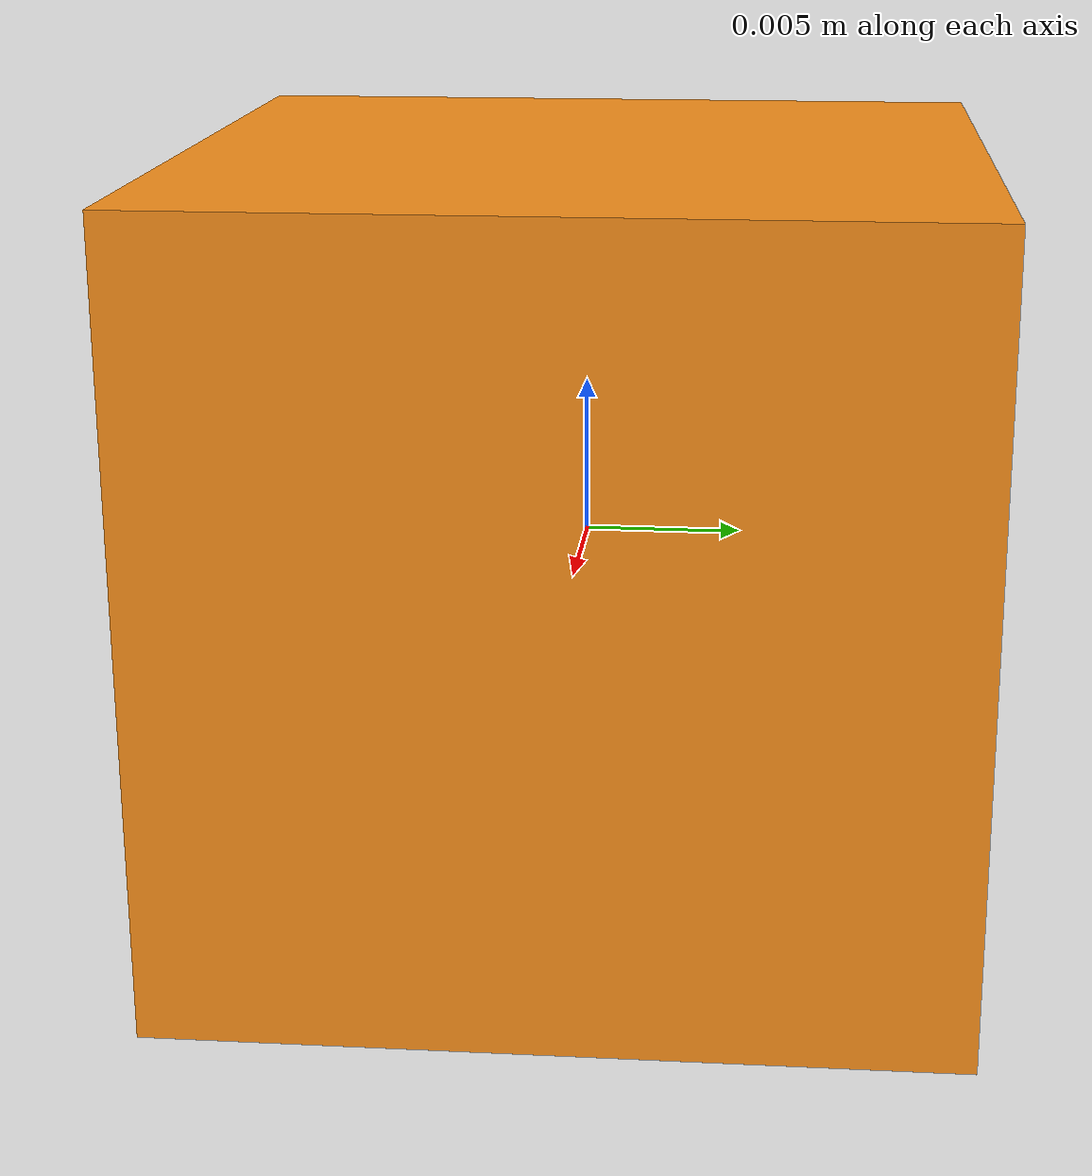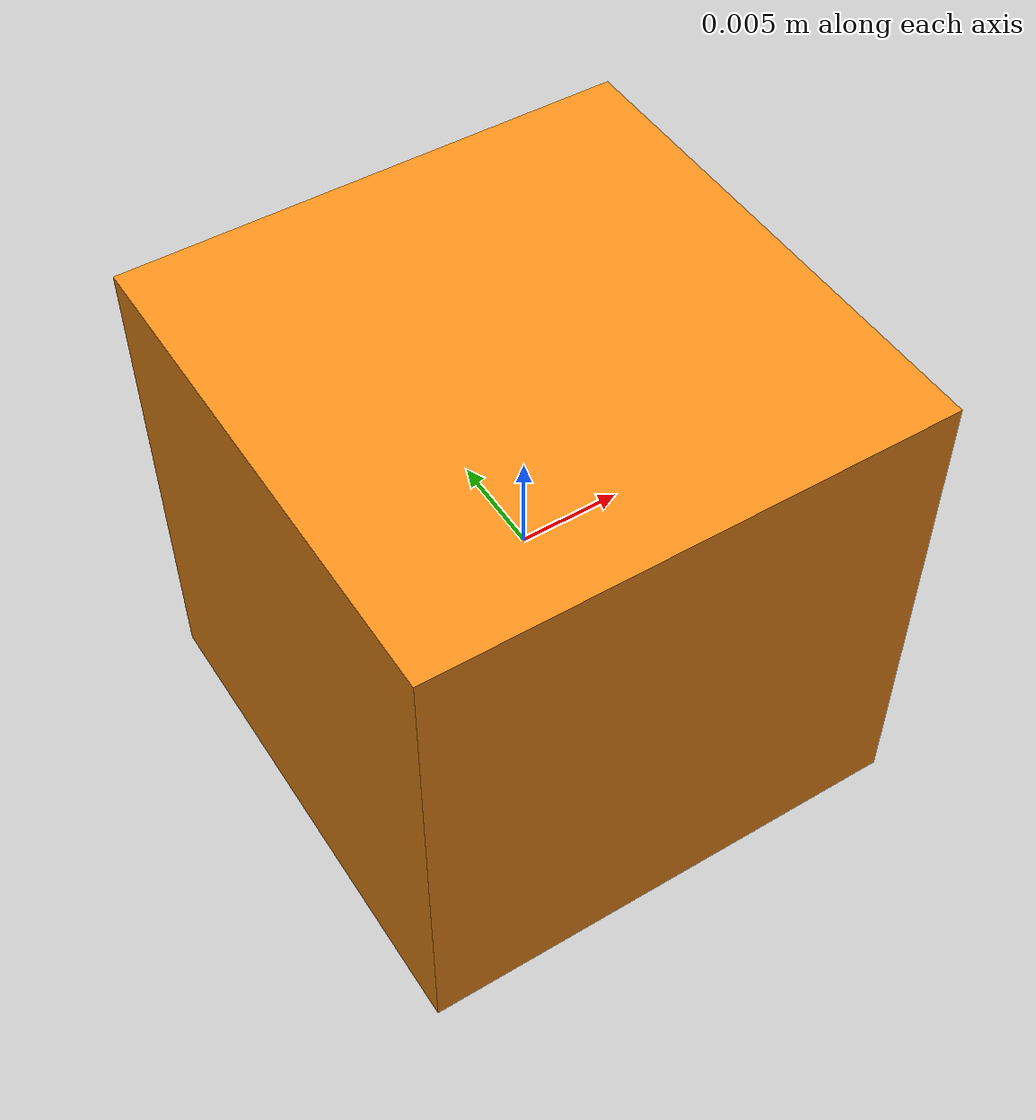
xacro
<?xml version="1.0"?>
<robot name="Fixed_Camera" xmlns:xacro="http://www.ros.org/wiki/xacro">

  <xacro:property name="camera_link" value="0.025" />

  <link name="world" />

  <joint name="camera_joint" type="fixed">
    <axis xyz="0 1 0" />
    <origin xyz="0 0 0" rpy="0 0 0" />
    <parent link="world" />
    <child link="camera_link" />
  </joint>

  <!-- Camera -->
  <link name="camera_link">
    <collision>
      <origin xyz="0 0 0" rpy="0 0 0" />
      <geometry>
        <box size="${camera_link} ${camera_link} ${camera_link}" />
      </geometry>
    </collision>
    <visual>
      <origin xyz="0 0 0" rpy="0 0 0" />
      <geometry>
        <box size="${camera_link} ${camera_link} ${camera_link}" />
      </geometry>
      <material name="orange"/>
    </visual>
    <inertial>
      <mass value="1e-5" />
      <origin xyz="0 0 0" rpy="0 0 0" />
      <inertia ixx="1e-6" ixy="0" ixz="0" iyy="1e-6" iyz="0" izz="1e-6" />
    </inertial>
  </link>

  <!-- camera -->
  <gazebo reference="camera_link">
    <sensor type="camera" name="camera1">
      <update_rate>10.0</update_rate>
      <camera name="head">
        <horizontal_fov>1.3962634</horizontal_fov>
        <image>
          <width>320</width>
          <height>240</height>
          <format>R8G8B8</format>
        </image>
        <clip>
          <near>0.02</near>
          <far>300</far>
        </clip>
        <noise>
          <type>gaussian</type>
          <!-- Noise is sampled independently per pixel on each frame.
               That pixel's noise value is added to each of its color
               channels, which at that point lie in the range [0,1]. -->
          <mean>0.0</mean>
          <stddev>0.000</stddev>
        </noise>
      </camera>
      <plugin name="camera_controller" filename="libgazebo_ros_camera.so">
        <alwaysOn>true</alwaysOn>
        <updateRate>0.0</updateRate>
        <cameraName>camera1</cameraName>
        <imageTopicName>image</imageTopicName>
        <cameraInfoTopicName>camera_info</cameraInfoTopicName>
        <frameName>camera_link</frameName>
        <hackBaseline>0.07</hackBaseline>
        <distortionK1>0.0</distortionK1>
        <distortionK2>0.0</distortionK2>
        <distortionK3>0.0</distortionK3>
        <distortionT1>0.0</distortionT1>
        <distortionT2>0.0</distortionT2>
      </plugin>
    </sensor>
  </gazebo>

</robot>
